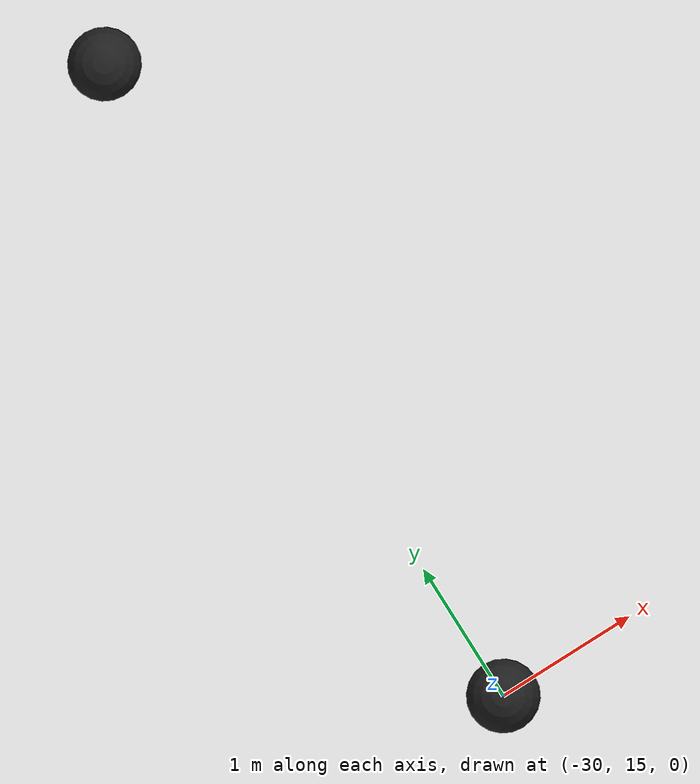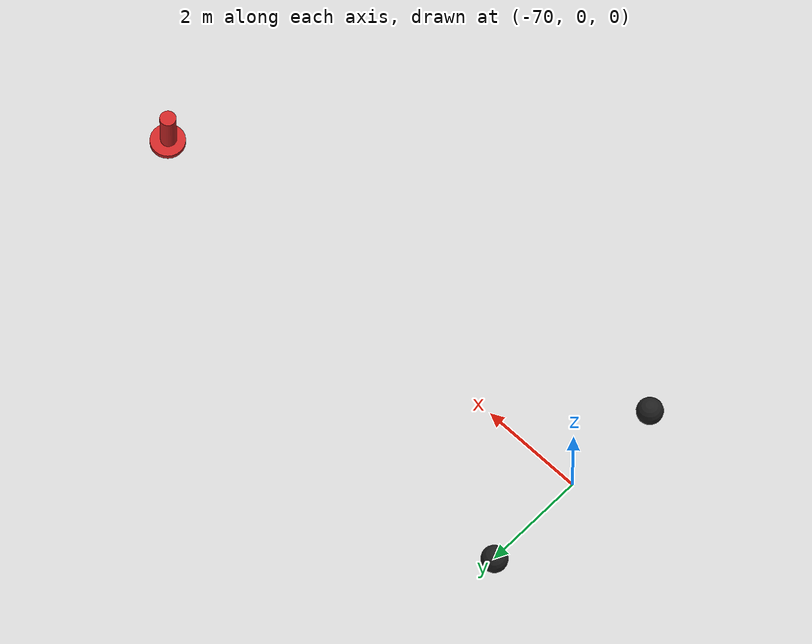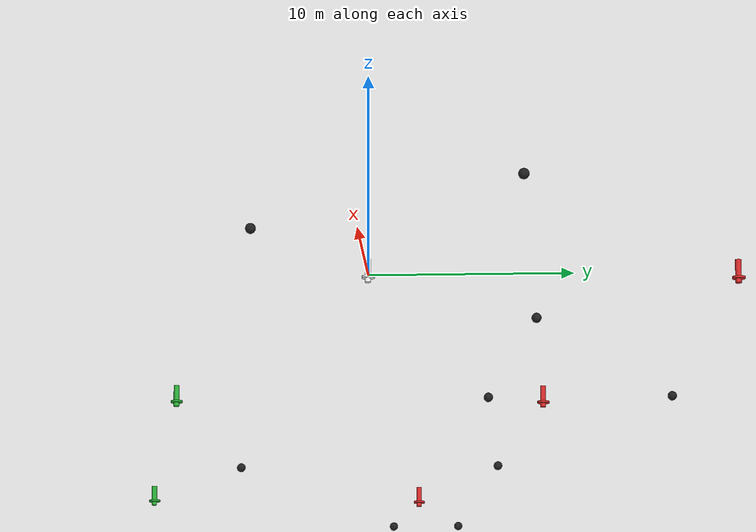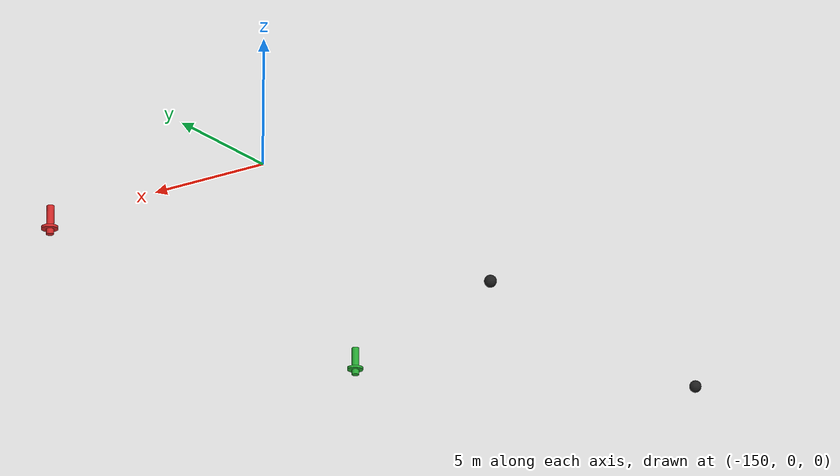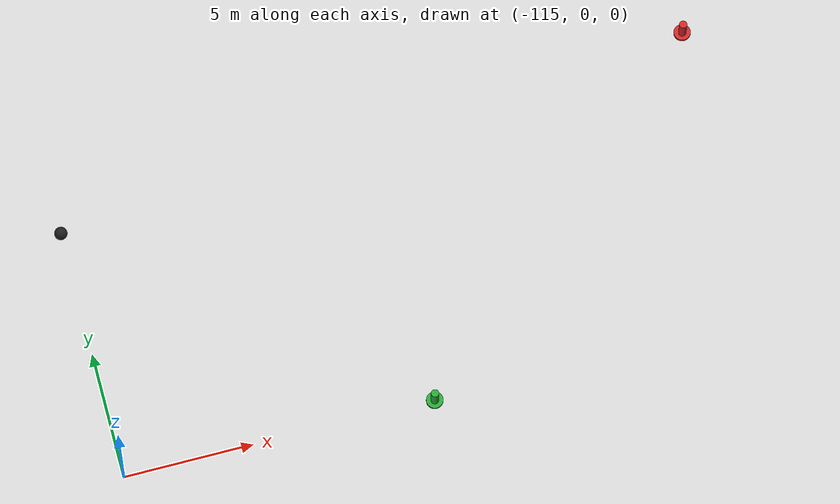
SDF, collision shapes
<?xml version="1.0"?>
<!-- Model for the short navigation course -->
<sdf version="1.6">
  <model name="short_navigation_course_2">

    <!-- Starboard_border -->
    <include>
      <name>red_bound_0</name>
      <pose>0 18 0 0 0 0</pose>
      <uri>https://fuel.gazebosim.org/1.0/openrobotics/models/mb_marker_buoy_red</uri>
      <plugin filename="gz-sim-label-system" name="gz::sim::systems::Label">
        <label>2</label>
      </plugin>
      <plugin name="vrx::PolyhedraBuoyancyDrag"
              filename="libPolyhedraBuoyancyDrag.so">
        <fluid_density>1000</fluid_density>
        <fluid_level>0.0</fluid_level>
        <linear_drag>25.0</linear_drag>
        <angular_drag>2.0</angular_drag>
        <buoyancy name="collision_outer">
          <link_name>link</link_name>
          <pose>0 0 -0.3 0 0 0</pose>
          <geometry>
            <cylinder>
              <radius>0.325</radius>
              <length>0.1</length>
            </cylinder>
          </geometry>
        </buoyancy>
        <wavefield>
          <size>1000 1000</size>
          <cell_count>50 50</cell_count>
          <wave>
            <model>PMS</model>
            <period>5.0</period>
            <number>3</number>
            <scale>1.1</scale>
            <gain>0.3</gain>
            <direction>1 0</direction>
            <angle>0.4</angle>
            <tau>2.0</tau>
            <amplitude>0.0</amplitude>
            <steepness>0.0</steepness>
          </wave>
        </wavefield>
      </plugin>

    </include>

    <include>
      <name>red_bound_1</name>
      <pose>-30 8 0 0 0 0</pose>
      <uri>https://fuel.gazebosim.org/1.0/openrobotics/models/mb_marker_buoy_red</uri>
      <plugin filename="gz-sim-label-system" name="gz::sim::systems::Label">
        <label>2</label>
      </plugin>
      <plugin name="vrx::PolyhedraBuoyancyDrag"
              filename="libPolyhedraBuoyancyDrag.so">
        <fluid_density>1000</fluid_density>
        <fluid_level>0.0</fluid_level>
        <linear_drag>25.0</linear_drag>
        <angular_drag>2.0</angular_drag>
        <buoyancy name="collision_outer">
          <link_name>link</link_name>
          <pose>0 0 -0.3 0 0 0</pose>
          <geometry>
            <cylinder>
              <radius>0.325</radius>
              <length>0.1</length>
            </cylinder>
          </geometry>
        </buoyancy>
        <wavefield>
          <size>1000 1000</size>
          <cell_count>50 50</cell_count>
          <wave>
            <model>PMS</model>
            <period>5.0</period>
            <number>3</number>
            <scale>1.1</scale>
            <gain>0.3</gain>
            <direction>1 0</direction>
            <angle>0.4</angle>
            <tau>2.0</tau>
            <amplitude>0.0</amplitude>
            <steepness>0.0</steepness>
          </wave>
        </wavefield>
      </plugin>

    </include>

    <include>
      <name>red_bound_2</name>
      <pose>-60 0 0 0 0 0</pose>
      <uri>https://fuel.gazebosim.org/1.0/openrobotics/models/mb_marker_buoy_red</uri>
      <plugin filename="gz-sim-label-system" name="gz::sim::systems::Label">
        <label>2</label>
      </plugin>
      <plugin name="vrx::PolyhedraBuoyancyDrag"
              filename="libPolyhedraBuoyancyDrag.so">
        <fluid_density>1000</fluid_density>
        <fluid_level>0.0</fluid_level>
        <linear_drag>25.0</linear_drag>
        <angular_drag>2.0</angular_drag>
        <buoyancy name="collision_outer">
          <link_name>link</link_name>
          <pose>0 0 -0.3 0 0 0</pose>
          <geometry>
            <cylinder>
              <radius>0.325</radius>
              <length>0.1</length>
            </cylinder>
          </geometry>
        </buoyancy>
        <wavefield>
          <size>1000 1000</size>
          <cell_count>50 50</cell_count>
          <wave>
            <model>PMS</model>
            <period>5.0</period>
            <number>3</number>
            <scale>1.1</scale>
            <gain>0.3</gain>
            <direction>1 0</direction>
            <angle>0.4</angle>
            <tau>2.0</tau>
            <amplitude>0.0</amplitude>
            <steepness>0.0</steepness>
          </wave>
        </wavefield>
      </plugin>

    </include>

    <include>
      <name>red_bound_3</name>
      <pose>-90 12 0 0 0 0</pose>
      <uri>https://fuel.gazebosim.org/1.0/openrobotics/models/mb_marker_buoy_red</uri>
      <plugin filename="gz-sim-label-system" name="gz::sim::systems::Label">
        <label>2</label>
      </plugin>
      <plugin name="vrx::PolyhedraBuoyancyDrag"
              filename="libPolyhedraBuoyancyDrag.so">
        <fluid_density>1000</fluid_density>
        <fluid_level>0.0</fluid_level>
        <linear_drag>25.0</linear_drag>
        <angular_drag>2.0</angular_drag>
        <buoyancy name="collision_outer">
          <link_name>link</link_name>
          <pose>0 0 -0.3 0 0 0</pose>
          <geometry>
            <cylinder>
              <radius>0.325</radius>
              <length>0.1</length>
            </cylinder>
          </geometry>
        </buoyancy>
        <wavefield>
          <size>1000 1000</size>
          <cell_count>50 50</cell_count>
          <wave>
            <model>PMS</model>
            <period>5.0</period>
            <number>3</number>
            <scale>1.1</scale>
            <gain>0.3</gain>
            <direction>1 0</direction>
            <angle>0.4</angle>
            <tau>2.0</tau>
            <amplitude>0.0</amplitude>
            <steepness>0.0</steepness>
          </wave>
        </wavefield>
      </plugin>

    </include>

    <include>
      <name>red_bound_4</name>
      <pose>-140 0 0 0 0 0</pose>
      <uri>https://fuel.gazebosim.org/1.0/openrobotics/models/mb_marker_buoy_red</uri>
      <plugin filename="gz-sim-label-system" name="gz::sim::systems::Label">
        <label>2</label>
      </plugin>
      <plugin name="vrx::PolyhedraBuoyancyDrag"
              filename="libPolyhedraBuoyancyDrag.so">
        <fluid_density>1000</fluid_density>
        <fluid_level>0.0</fluid_level>
        <linear_drag>25.0</linear_drag>
        <angular_drag>2.0</angular_drag>
        <buoyancy name="collision_outer">
          <link_name>link</link_name>
          <pose>0 0 -0.3 0 0 0</pose>
          <geometry>
            <cylinder>
              <radius>0.325</radius>
              <length>0.1</length>
            </cylinder>
          </geometry>
        </buoyancy>
        <wavefield>
          <size>1000 1000</size>
          <cell_count>50 50</cell_count>
          <wave>
            <model>PMS</model>
            <period>5.0</period>
            <number>3</number>
            <scale>1.1</scale>
            <gain>0.3</gain>
            <direction>1 0</direction>
            <angle>0.4</angle>
            <tau>2.0</tau>
            <amplitude>0.0</amplitude>
            <steepness>0.0</steepness>
          </wave>
        </wavefield>
      </plugin>

    </include>

    <include>
      <name>red_bound_5</name>
      <pose>-180 -10 0 0 0 0</pose>
      <uri>https://fuel.gazebosim.org/1.0/openrobotics/models/mb_marker_buoy_red</uri>
      <plugin filename="gz-sim-label-system" name="gz::sim::systems::Label">
        <label>2</label>
      </plugin>
      <plugin name="vrx::PolyhedraBuoyancyDrag"
              filename="libPolyhedraBuoyancyDrag.so">
        <fluid_density>1000</fluid_density>
        <fluid_level>0.0</fluid_level>
        <linear_drag>25.0</linear_drag>
        <angular_drag>2.0</angular_drag>
        <buoyancy name="collision_outer">
          <link_name>link</link_name>
          <pose>0 0 -0.3 0 0 0</pose>
          <geometry>
            <cylinder>
              <radius>0.325</radius>
              <length>0.1</length>
            </cylinder>
          </geometry>
        </buoyancy>
        <wavefield>
          <size>1000 1000</size>
          <cell_count>50 50</cell_count>
          <wave>
            <model>PMS</model>
            <period>5.0</period>
            <number>3</number>
            <scale>1.1</scale>
            <gain>0.3</gain>
            <direction>1 0</direction>
            <angle>0.4</angle>
            <tau>2.0</tau>
            <amplitude>0.0</amplitude>
            <steepness>0.0</steepness>
          </wave>
        </wavefield>
      </plugin>

    </include>

    <include>
      <name>red_bound_6</name>
      <pose>-240 -52 0 0 0 0</pose>
      <uri>https://fuel.gazebosim.org/1.0/openrobotics/models/mb_marker_buoy_red</uri>
      <plugin filename="gz-sim-label-system" name="gz::sim::systems::Label">
        <label>2</label>
      </plugin>
      <plugin name="vrx::PolyhedraBuoyancyDrag"
              filename="libPolyhedraBuoyancyDrag.so">
        <fluid_density>1000</fluid_density>
        <fluid_level>0.0</fluid_level>
        <linear_drag>25.0</linear_drag>
        <angular_drag>2.0</angular_drag>
        <buoyancy name="collision_outer">
          <link_name>link</link_name>
          <pose>0 0 -0.3 0 0 0</pose>
          <geometry>
            <cylinder>
              <radius>0.325</radius>
              <length>0.1</length>
            </cylinder>
          </geometry>
        </buoyancy>
        <wavefield>
          <size>1000 1000</size>
          <cell_count>50 50</cell_count>
          <wave>
            <model>PMS</model>
            <period>5.0</period>
            <number>3</number>
            <scale>1.1</scale>
            <gain>0.3</gain>
            <direction>1 0</direction>
            <angle>0.4</angle>
            <tau>2.0</tau>
            <amplitude>0.0</amplitude>
            <steepness>0.0</steepness>
          </wave>
        </wavefield>
      </plugin>

    </include>

    <include>
      <name>red_bound_7</name>
      <pose>-230 -90 0 0 0 0</pose>
      <uri>https://fuel.gazebosim.org/1.0/openrobotics/models/mb_marker_buoy_red</uri>
      <plugin filename="gz-sim-label-system" name="gz::sim::systems::Label">
        <label>2</label>
      </plugin>
      <plugin name="vrx::PolyhedraBuoyancyDrag"
              filename="libPolyhedraBuoyancyDrag.so">
        <fluid_density>1000</fluid_density>
        <fluid_level>0.0</fluid_level>
        <linear_drag>25.0</linear_drag>
        <angular_drag>2.0</angular_drag>
        <buoyancy name="collision_outer">
          <link_name>link</link_name>
          <pose>0 0 -0.3 0 0 0</pose>
          <geometry>
            <cylinder>
              <radius>0.325</radius>
              <length>0.1</length>
            </cylinder>
          </geometry>
        </buoyancy>
        <wavefield>
          <size>1000 1000</size>
          <cell_count>50 50</cell_count>
          <wave>
            <model>PMS</model>
            <period>5.0</period>
            <number>3</number>
            <scale>1.1</scale>
            <gain>0.3</gain>
            <direction>1 0</direction>
            <angle>0.4</angle>
            <tau>2.0</tau>
            <amplitude>0.0</amplitude>
            <steepness>0.0</steepness>
          </wave>
        </wavefield>
      </plugin>

    </include>

    <include>
      <name>red_bound_8</name>
      <pose>-230 -130 0 0 0 0</pose>
      <uri>https://fuel.gazebosim.org/1.0/openrobotics/models/mb_marker_buoy_red</uri>
      <plugin filename="gz-sim-label-system" name="gz::sim::systems::Label">
        <label>2</label>
      </plugin>
      <plugin name="vrx::PolyhedraBuoyancyDrag"
              filename="libPolyhedraBuoyancyDrag.so">
        <fluid_density>1000</fluid_density>
        <fluid_level>0.0</fluid_level>
        <linear_drag>25.0</linear_drag>
        <angular_drag>2.0</angular_drag>
        <buoyancy name="collision_outer">
          <link_name>link</link_name>
          <pose>0 0 -0.3 0 0 0</pose>
          <geometry>
            <cylinder>
              <radius>0.325</radius>
              <length>0.1</length>
            </cylinder>
          </geometry>
        </buoyancy>
        <wavefield>
          <size>1000 1000</size>
          <cell_count>50 50</cell_count>
          <wave>
            <model>PMS</model>
            <period>5.0</period>
            <number>3</number>
            <scale>1.1</scale>
            <gain>0.3</gain>
            <direction>1 0</direction>
            <angle>0.4</angle>
            <tau>2.0</tau>
            <amplitude>0.0</amplitude>
            <steepness>0.0</steepness>
          </wave>
        </wavefield>
      </plugin>

    </include>

    <!-- Port_border -->
    <include>
      <name>green_bound_0</name>
      <pose>0 0 0.2 0 0 0</pose>
      <uri>https://fuel.gazebosim.org/1.0/openrobotics/models/mb_marker_buoy_white</uri>
      <plugin filename="gz-sim-label-system" name="gz::sim::systems::Label">
        <label>5</label>
      </plugin>
      <plugin name="vrx::PolyhedraBuoyancyDrag"
              filename="libPolyhedraBuoyancyDrag.so">
        <fluid_density>1000</fluid_density>
        <fluid_level>0.0</fluid_level>
        <linear_drag>25.0</linear_drag>
        <angular_drag>2.0</angular_drag>
        <buoyancy name="collision_outer">
          <link_name>link</link_name>
          <pose>0 0 -0.3 0 0 0</pose>
          <geometry>
            <cylinder>
              <radius>0.325</radius>
              <length>0.1</length>
            </cylinder>
          </geometry>
        </buoyancy>
        <wavefield>
          <size>1000 1000</size>
          <cell_count>50 50</cell_count>
          <wave>
            <model>PMS</model>
            <period>5.0</period>
            <number>3</number>
            <scale>1.1</scale>
            <gain>0.3</gain>
            <direction>1 0</direction>
            <angle>0.4</angle>
            <tau>2.0</tau>
            <amplitude>0.0</amplitude>
            <steepness>0.0</steepness>
          </wave>
        </wavefield>
      </plugin>

    </include>

    <include>
      <name>green_bound_1</name>
      <pose>-30 -12 0.2 0 0 0</pose>
      <uri>https://fuel.gazebosim.org/1.0/openrobotics/models/mb_marker_buoy_green</uri>
      <plugin filename="gz-sim-label-system" name="gz::sim::systems::Label">
        <label>3</label>
      </plugin>
      <plugin name="vrx::PolyhedraBuoyancyDrag"
              filename="libPolyhedraBuoyancyDrag.so">
        <fluid_density>1000</fluid_density>
        <fluid_level>0.0</fluid_level>
        <linear_drag>25.0</linear_drag>
        <angular_drag>2.0</angular_drag>
        <buoyancy name="collision_outer">
          <link_name>link</link_name>
          <pose>0 0 -0.3 0 0 0</pose>
          <geometry>
            <cylinder>
              <radius>0.325</radius>
              <length>0.1</length>
            </cylinder>
          </geometry>
        </buoyancy>
        <wavefield>
          <size>1000 1000</size>
          <cell_count>50 50</cell_count>
          <wave>
            <model>PMS</model>
            <period>5.0</period>
            <number>3</number>
            <scale>1.1</scale>
            <gain>0.3</gain>
            <direction>1 0</direction>
            <angle>0.4</angle>
            <tau>2.0</tau>
            <amplitude>0.0</amplitude>
            <steepness>0.0</steepness>
          </wave>
        </wavefield>
      </plugin>

    </include>

    <include>
      <name>green_bound_2</name>
      <pose>-60 -16 0.2 0 0 0</pose>
      <uri>https://fuel.gazebosim.org/1.0/openrobotics/models/mb_marker_buoy_green</uri>
      <plugin filename="gz-sim-label-system" name="gz::sim::systems::Label">
        <label>3</label>
      </plugin>
      <plugin name="vrx::PolyhedraBuoyancyDrag"
              filename="libPolyhedraBuoyancyDrag.so">
        <fluid_density>1000</fluid_density>
        <fluid_level>0.0</fluid_level>
        <linear_drag>25.0</linear_drag>
        <angular_drag>2.0</angular_drag>
        <buoyancy name="collision_outer">
          <link_name>link</link_name>
          <pose>0 0 -0.3 0 0 0</pose>
          <geometry>
            <cylinder>
              <radius>0.325</radius>
              <length>0.1</length>
            </cylinder>
          </geometry>
        </buoyancy>
        <wavefield>
          <size>1000 1000</size>
          <cell_count>50 50</cell_count>
          <wave>
            <model>PMS</model>
            <period>5.0</period>
            <number>3</number>
            <scale>1.1</scale>
            <gain>0.3</gain>
            <direction>1 0</direction>
            <angle>0.4</angle>
            <tau>2.0</tau>
            <amplitude>0.0</amplitude>
            <steepness>0.0</steepness>
          </wave>
        </wavefield>
      </plugin>

    </include>

    <include>
      <name>green_bound_3</name>
      <pose>-103 0 0.2 0 0 0</pose>
      <uri>https://fuel.gazebosim.org/1.0/openrobotics/models/mb_marker_buoy_green</uri>
      <plugin filename="gz-sim-label-system" name="gz::sim::systems::Label">
        <label>3</label>
      </plugin>
      <plugin name="vrx::PolyhedraBuoyancyDrag"
              filename="libPolyhedraBuoyancyDrag.so">
        <fluid_density>1000</fluid_density>
        <fluid_level>0.0</fluid_level>
        <linear_drag>25.0</linear_drag>
        <angular_drag>2.0</angular_drag>
        <buoyancy name="collision_outer">
          <link_name>link</link_name>
          <pose>0 0 -0.3 0 0 0</pose>
          <geometry>
            <cylinder>
              <radius>0.325</radius>
              <length>0.1</length>
            </cylinder>
          </geometry>
        </buoyancy>
        <wavefield>
          <size>1000 1000</size>
          <cell_count>50 50</cell_count>
          <wave>
            <model>PMS</model>
            <period>5.0</period>
            <number>3</number>
            <scale>1.1</scale>
            <gain>0.3</gain>
            <direction>1 0</direction>
            <angle>0.4</angle>
            <tau>2.0</tau>
            <amplitude>0.0</amplitude>
            <steepness>0.0</steepness>
          </wave>
        </wavefield>
      </plugin>

    </include>

    <include>
      <name>green_bound_4</name>
      <pose>-140 -20 0.2 0 0 0</pose>
      <uri>https://fuel.gazebosim.org/1.0/openrobotics/models/mb_marker_buoy_green</uri>
      <plugin filename="gz-sim-label-system" name="gz::sim::systems::Label">
        <label>3</label>
      </plugin>
      <plugin name="vrx::PolyhedraBuoyancyDrag"
              filename="libPolyhedraBuoyancyDrag.so">
        <fluid_density>1000</fluid_density>
        <fluid_level>0.0</fluid_level>
        <linear_drag>25.0</linear_drag>
        <angular_drag>2.0</angular_drag>
        <buoyancy name="collision_outer">
          <link_name>link</link_name>
          <pose>0 0 -0.3 0 0 0</pose>
          <geometry>
            <cylinder>
              <radius>0.325</radius>
              <length>0.1</length>
            </cylinder>
          </geometry>
        </buoyancy>
        <wavefield>
          <size>1000 1000</size>
          <cell_count>50 50</cell_count>
          <wave>
            <model>PMS</model>
            <period>5.0</period>
            <number>3</number>
            <scale>1.1</scale>
            <gain>0.3</gain>
            <direction>1 0</direction>
            <angle>0.4</angle>
            <tau>2.0</tau>
            <amplitude>0.0</amplitude>
            <steepness>0.0</steepness>
          </wave>
        </wavefield>
      </plugin>

    </include>

    <include>
      <name>green_bound_5</name>
      <pose>-170 -30 0.2 0 0 0</pose>
      <uri>https://fuel.gazebosim.org/1.0/openrobotics/models/mb_marker_buoy_green</uri>
      <plugin filename="gz-sim-label-system" name="gz::sim::systems::Label">
        <label>3</label>
      </plugin>
      <plugin name="vrx::PolyhedraBuoyancyDrag"
              filename="libPolyhedraBuoyancyDrag.so">
        <fluid_density>1000</fluid_density>
        <fluid_level>0.0</fluid_level>
        <linear_drag>25.0</linear_drag>
        <angular_drag>2.0</angular_drag>
        <buoyancy name="collision_outer">
          <link_name>link</link_name>
          <pose>0 0 -0.3 0 0 0</pose>
          <geometry>
            <cylinder>
              <radius>0.325</radius>
              <length>0.1</length>
            </cylinder>
          </geometry>
        </buoyancy>
        <wavefield>
          <size>1000 1000</size>
          <cell_count>50 50</cell_count>
          <wave>
            <model>PMS</model>
            <period>5.0</period>
            <number>3</number>
            <scale>1.1</scale>
            <gain>0.3</gain>
            <direction>1 0</direction>
            <angle>0.4</angle>
            <tau>2.0</tau>
            <amplitude>0.0</amplitude>
            <steepness>0.0</steepness>
          </wave>
        </wavefield>
      </plugin>

    </include>

    <include>
      <name>green_bound_6</name>
      <pose>-220 -60 0.2 0 0 0</pose>
      <uri>https://fuel.gazebosim.org/1.0/openrobotics/models/mb_marker_buoy_green</uri>
      <plugin filename="gz-sim-label-system" name="gz::sim::systems::Label">
        <label>3</label>
      </plugin>
      <plugin name="vrx::PolyhedraBuoyancyDrag"
              filename="libPolyhedraBuoyancyDrag.so">
        <fluid_density>1000</fluid_density>
        <fluid_level>0.0</fluid_level>
        <linear_drag>25.0</linear_drag>
        <angular_drag>2.0</angular_drag>
        <buoyancy name="collision_outer">
          <link_name>link</link_name>
          <pose>0 0 -0.3 0 0 0</pose>
          <geometry>
            <cylinder>
              <radius>0.325</radius>
              <length>0.1</length>
            </cylinder>
          </geometry>
        </buoyancy>
        <wavefield>
          <size>1000 1000</size>
          <cell_count>50 50</cell_count>
          <wave>
            <model>PMS</model>
            <period>5.0</period>
            <number>3</number>
            <scale>1.1</scale>
            <gain>0.3</gain>
            <direction>1 0</direction>
            <angle>0.4</angle>
            <tau>2.0</tau>
            <amplitude>0.0</amplitude>
            <steepness>0.0</steepness>
          </wave>
        </wavefield>
      </plugin>

    </include>

    <include>
      <name>green_bound_7</name>
      <pose>-210 -90 0.2 0 0 0</pose>
      <uri>https://fuel.gazebosim.org/1.0/openrobotics/models/mb_marker_buoy_green</uri>
      <plugin filename="gz-sim-label-system" name="gz::sim::systems::Label">
        <label>3</label>
      </plugin>
      <plugin name="vrx::PolyhedraBuoyancyDrag"
              filename="libPolyhedraBuoyancyDrag.so">
        <fluid_density>1000</fluid_density>
        <fluid_level>0.0</fluid_level>
        <linear_drag>25.0</linear_drag>
        <angular_drag>2.0</angular_drag>
        <buoyancy name="collision_outer">
          <link_name>link</link_name>
          <pose>0 0 -0.3 0 0 0</pose>
          <geometry>
            <cylinder>
              <radius>0.325</radius>
              <length>0.1</length>
            </cylinder>
          </geometry>
        </buoyancy>
        <wavefield>
          <size>1000 1000</size>
          <cell_count>50 50</cell_count>
          <wave>
            <model>PMS</model>
            <period>5.0</period>
            <number>3</number>
            <scale>1.1</scale>
            <gain>0.3</gain>
            <direction>1 0</direction>
            <angle>0.4</angle>
            <tau>2.0</tau>
            <amplitude>0.0</amplitude>
            <steepness>0.0</steepness>
          </wave>
        </wavefield>
      </plugin>

    </include>

    <include>
      <name>green_bound_8</name>
      <pose>-210 -120 0.2 0 0 0</pose>
      <uri>https://fuel.gazebosim.org/1.0/openrobotics/models/mb_marker_buoy_black</uri>
      <plugin filename="gz-sim-label-system" name="gz::sim::systems::Label">
        <label>4</label>
      </plugin>
      <plugin name="vrx::PolyhedraBuoyancyDrag"
              filename="libPolyhedraBuoyancyDrag.so">
        <fluid_density>1000</fluid_density>
        <fluid_level>0.0</fluid_level>
        <linear_drag>25.0</linear_drag>
        <angular_drag>2.0</angular_drag>
        <buoyancy name="collision_outer">
          <link_name>link</link_name>
          <pose>0 0 -0.3 0 0 0</pose>
          <geometry>
            <cylinder>
              <radius>0.325</radius>
              <length>0.1</length>
            </cylinder>
          </geometry>
        </buoyancy>
        <wavefield>
          <size>1000 1000</size>
          <cell_count>50 50</cell_count>
          <wave>
            <model>PMS</model>
            <period>5.0</period>
            <number>3</number>
            <scale>1.1</scale>
            <gain>0.3</gain>
            <direction>1 0</direction>
            <angle>0.4</angle>
            <tau>2.0</tau>
            <amplitude>0.0</amplitude>
            <steepness>0.0</steepness>
          </wave>
        </wavefield>
      </plugin>

    </include>

    <!-- Obstacles -->
    <include>
      <name>obstacle_0</name>
      <pose>-10 8 0.0 0 0 0 </pose>
      <uri>https://fuel.gazebosim.org/1.0/openrobotics/models/mb_round_buoy_black</uri>
      <plugin filename="gz-sim-label-system" name="gz::sim::systems::Label">
        <label>8</label>
      </plugin>
      <plugin name="vrx::PolyhedraBuoyancyDrag"
              filename="libPolyhedraBuoyancyDrag.so">
        <fluid_density>1000</fluid_density>
        <fluid_level>0.0</fluid_level>
        <linear_drag>75.0</linear_drag>
        <angular_drag>2.0</angular_drag>
        <buoyancy name="collision_outer">
          <link_name>link</link_name>
          <pose>0 0 0 0 0 0</pose>
          <geometry>
            <sphere>
              <radius>0.21</radius>
          </sphere>
          </geometry>
        </buoyancy>
        <wavefield>
          <topic>/vrx/wavefield/parameters</topic>
        </wavefield>
      </plugin>
    </include>

    <include>
      <name>obstacle_1</name>
      <pose>-30 20 0.0 0 0 0 </pose>
      <uri>https://fuel.gazebosim.org/1.0/openrobotics/models/mb_round_buoy_black</uri>
      <plugin filename="gz-sim-label-system" name="gz::sim::systems::Label">
        <label>8</label>
      </plugin>
      <plugin name="vrx::PolyhedraBuoyancyDrag"
              filename="libPolyhedraBuoyancyDrag.so">
        <fluid_density>1000</fluid_density>
        <fluid_level>0.0</fluid_level>
        <linear_drag>75.0</linear_drag>
        <angular_drag>2.0</angular_drag>
        <buoyancy name="collision_outer">
          <link_name>link</link_name>
          <pose>0 0 0 0 0 0</pose>
          <geometry>
            <sphere>
              <radius>0.21</radius>
          </sphere>
          </geometry>
        </buoyancy>
        <wavefield>
          <topic>/vrx/wavefield/parameters</topic>
        </wavefield>
      </plugin>
    </include>

    <include>
      <name>obstacle_2</name>
      <pose>-30 15 0.0 0 0 0 </pose>
      <uri>https://fuel.gazebosim.org/1.0/openrobotics/models/mb_round_buoy_black</uri>
      <plugin filename="gz-sim-label-system" name="gz::sim::systems::Label">
        <label>8</label>
      </plugin>
      <plugin name="vrx::PolyhedraBuoyancyDrag"
              filename="libPolyhedraBuoyancyDrag.so">
        <fluid_density>1000</fluid_density>
        <fluid_level>0.0</fluid_level>
        <linear_drag>75.0</linear_drag>
        <angular_drag>2.0</angular_drag>
        <buoyancy name="collision_outer">
          <link_name>link</link_name>
          <pose>0 0 0 0 0 0</pose>
          <geometry>
            <sphere>
              <radius>0.21</radius>
          </sphere>
          </geometry>
        </buoyancy>
        <wavefield>
          <topic>/vrx/wavefield/parameters</topic>
        </wavefield>
      </plugin>
    </include>

    <include>
      <name>obstacle_3</name>
      <pose>-30 5 0.0 0 0 0 </pose>
      <uri>https://fuel.gazebosim.org/1.0/openrobotics/models/mb_round_buoy_black</uri>
      <plugin filename="gz-sim-label-system" name="gz::sim::systems::Label">
        <label>8</label>
      </plugin>
      <plugin name="vrx::PolyhedraBuoyancyDrag"
              filename="libPolyhedraBuoyancyDrag.so">
        <fluid_density>1000</fluid_density>
        <fluid_level>0.0</fluid_level>
        <linear_drag>75.0</linear_drag>
        <angular_drag>2.0</angular_drag>
        <buoyancy name="collision_outer">
          <link_name>link</link_name>
          <pose>0 0 0 0 0 0</pose>
          <geometry>
            <sphere>
              <radius>0.21</radius>
          </sphere>
          </geometry>
        </buoyancy>
        <wavefield>
          <topic>/vrx/wavefield/parameters</topic>
        </wavefield>
      </plugin>
    </include>

    <include>
      <name>obstacle_4</name>
      <pose>-50 5 0.0 0 0 0 </pose>
      <uri>https://fuel.gazebosim.org/1.0/openrobotics/models/mb_round_buoy_black</uri>
      <plugin filename="gz-sim-label-system" name="gz::sim::systems::Label">
        <label>8</label>
      </plugin>
      <plugin name="vrx::PolyhedraBuoyancyDrag"
              filename="libPolyhedraBuoyancyDrag.so">
        <fluid_density>1000</fluid_density>
        <fluid_level>0.0</fluid_level>
        <linear_drag>75.0</linear_drag>
        <angular_drag>2.0</angular_drag>
        <buoyancy name="collision_outer">
          <link_name>link</link_name>
          <pose>0 0 0 0 0 0</pose>
          <geometry>
            <sphere>
              <radius>0.21</radius>
          </sphere>
          </geometry>
        </buoyancy>
        <wavefield>
          <topic>/vrx/wavefield/parameters</topic>
        </wavefield>
      </plugin>
    </include>

    <include>
      <name>obstacle_5</name>
      <pose>-50 -10 0.0 0 0 0 </pose>
      <uri>https://fuel.gazebosim.org/1.0/openrobotics/models/mb_round_buoy_black</uri>
      <plugin filename="gz-sim-label-system" name="gz::sim::systems::Label">
        <label>8</label>
      </plugin>
      <plugin name="vrx::PolyhedraBuoyancyDrag"
              filename="libPolyhedraBuoyancyDrag.so">
        <fluid_density>1000</fluid_density>
        <fluid_level>0.0</fluid_level>
        <linear_drag>75.0</linear_drag>
        <angular_drag>2.0</angular_drag>
        <buoyancy name="collision_outer">
          <link_name>link</link_name>
          <pose>0 0 0 0 0 0</pose>
          <geometry>
            <sphere>
              <radius>0.21</radius>
          </sphere>
          </geometry>
        </buoyancy>
        <wavefield>
          <topic>/vrx/wavefield/parameters</topic>
        </wavefield>
      </plugin>
    </include>

    <include>
      <name>obstacle_6</name>
      <pose>-70 -2 0.0 0 0 0 </pose>
      <uri>https://fuel.gazebosim.org/1.0/openrobotics/models/mb_round_buoy_black</uri>
      <plugin filename="gz-sim-label-system" name="gz::sim::systems::Label">
        <label>8</label>
      </plugin>
      <plugin name="vrx::PolyhedraBuoyancyDrag"
              filename="libPolyhedraBuoyancyDrag.so">
        <fluid_density>1000</fluid_density>
        <fluid_level>0.0</fluid_level>
        <linear_drag>75.0</linear_drag>
        <angular_drag>2.0</angular_drag>
        <buoyancy name="collision_outer">
          <link_name>link</link_name>
          <pose>0 0 0 0 0 0</pose>
          <geometry>
            <sphere>
              <radius>0.21</radius>
          </sphere>
          </geometry>
        </buoyancy>
        <wavefield>
          <topic>/vrx/wavefield/parameters</topic>
        </wavefield>
      </plugin>
    </include>

    <include>
      <name>obstacle_7</name>
      <pose>-70 2 0.0 0 0 0 </pose>
      <uri>https://fuel.gazebosim.org/1.0/openrobotics/models/mb_round_buoy_black</uri>
      <plugin filename="gz-sim-label-system" name="gz::sim::systems::Label">
        <label>8</label>
      </plugin>
      <plugin name="vrx::PolyhedraBuoyancyDrag"
              filename="libPolyhedraBuoyancyDrag.so">
        <fluid_density>1000</fluid_density>
        <fluid_level>0.0</fluid_level>
        <linear_drag>75.0</linear_drag>
        <angular_drag>2.0</angular_drag>
        <buoyancy name="collision_outer">
          <link_name>link</link_name>
          <pose>0 0 0 0 0 0</pose>
          <geometry>
            <sphere>
              <radius>0.21</radius>
          </sphere>
          </geometry>
        </buoyancy>
        <wavefield>
          <topic>/vrx/wavefield/parameters</topic>
        </wavefield>
      </plugin>
    </include>

    <include>
      <name>obstacle_8</name>
      <pose>10 20 0.0 0 0 0 </pose>
      <uri>https://fuel.gazebosim.org/1.0/openrobotics/models/mb_round_buoy_black</uri>
      <plugin filename="gz-sim-label-system" name="gz::sim::systems::Label">
        <label>8</label>
      </plugin>
      <plugin name="vrx::PolyhedraBuoyancyDrag"
              filename="libPolyhedraBuoyancyDrag.so">
        <fluid_density>1000</fluid_density>
        <fluid_level>0.0</fluid_level>
        <linear_drag>75.0</linear_drag>
        <angular_drag>2.0</angular_drag>
        <buoyancy name="collision_outer">
          <link_name>link</link_name>
          <pose>0 0 0 0 0 0</pose>
          <geometry>
            <sphere>
              <radius>0.21</radius>
          </sphere>
          </geometry>
        </buoyancy>
        <wavefield>
          <topic>/vrx/wavefield/parameters</topic>
        </wavefield>
      </plugin>
    </include>

    <include>
      <name>obstacle_9</name>
      <pose>20 8 0.0 0 0 0 </pose>
      <uri>https://fuel.gazebosim.org/1.0/openrobotics/models/mb_round_buoy_black</uri>
      <plugin filename="gz-sim-label-system" name="gz::sim::systems::Label">
        <label>8</label>
      </plugin>
      <plugin name="vrx::PolyhedraBuoyancyDrag"
              filename="libPolyhedraBuoyancyDrag.so">
        <fluid_density>1000</fluid_density>
        <fluid_level>0.0</fluid_level>
        <linear_drag>75.0</linear_drag>
        <angular_drag>2.0</angular_drag>
        <buoyancy name="collision_outer">
          <link_name>link</link_name>
          <pose>0 0 0 0 0 0</pose>
          <geometry>
            <sphere>
              <radius>0.21</radius>
          </sphere>
          </geometry>
        </buoyancy>
        <wavefield>
          <topic>/vrx/wavefield/parameters</topic>
        </wavefield>
      </plugin>
    </include>

    <include>
      <name>obstacle_10</name>
      <pose>10 -5 0.0 0 0 0 </pose>
      <uri>https://fuel.gazebosim.org/1.0/openrobotics/models/mb_round_buoy_black</uri>
      <plugin filename="gz-sim-label-system" name="gz::sim::systems::Label">
        <label>8</label>
      </plugin>
      <plugin name="vrx::PolyhedraBuoyancyDrag"
              filename="libPolyhedraBuoyancyDrag.so">
        <fluid_density>1000</fluid_density>
        <fluid_level>0.0</fluid_level>
        <linear_drag>75.0</linear_drag>
        <angular_drag>2.0</angular_drag>
        <buoyancy name="collision_outer">
          <link_name>link</link_name>
          <pose>0 0 0 0 0 0</pose>
          <geometry>
            <sphere>
              <radius>0.21</radius>
          </sphere>
          </geometry>
        </buoyancy>
        <wavefield>
          <topic>/vrx/wavefield/parameters</topic>
        </wavefield>
      </plugin>
    </include>

    <include>
      <name>obstacle_11</name>
      <pose>-115 10 0.0 0 0 0 </pose>
      <uri>https://fuel.gazebosim.org/1.0/openrobotics/models/mb_round_buoy_black</uri>
      <plugin filename="gz-sim-label-system" name="gz::sim::systems::Label">
        <label>8</label>
      </plugin>
      <plugin name="vrx::PolyhedraBuoyancyDrag"
              filename="libPolyhedraBuoyancyDrag.so">
        <fluid_density>1000</fluid_density>
        <fluid_level>0.0</fluid_level>
        <linear_drag>75.0</linear_drag>
        <angular_drag>2.0</angular_drag>
        <buoyancy name="collision_outer">
          <link_name>link</link_name>
          <pose>0 0 0 0 0 0</pose>
          <geometry>
            <sphere>
              <radius>0.21</radius>
          </sphere>
          </geometry>
        </buoyancy>
        <wavefield>
          <topic>/vrx/wavefield/parameters</topic>
        </wavefield>
      </plugin>
    </include>

    <include>
      <name>obstacle_12</name>
      <pose>-150 -15 0.0 0 0 0 </pose>
      <uri>https://fuel.gazebosim.org/1.0/openrobotics/models/mb_round_buoy_black</uri>
      <plugin filename="gz-sim-label-system" name="gz::sim::systems::Label">
        <label>8</label>
      </plugin>
      <plugin name="vrx::PolyhedraBuoyancyDrag"
              filename="libPolyhedraBuoyancyDrag.so">
        <fluid_density>1000</fluid_density>
        <fluid_level>0.0</fluid_level>
        <linear_drag>75.0</linear_drag>
        <angular_drag>2.0</angular_drag>
        <buoyancy name="collision_outer">
          <link_name>link</link_name>
          <pose>0 0 0 0 0 0</pose>
          <geometry>
            <sphere>
              <radius>0.21</radius>
          </sphere>
          </geometry>
        </buoyancy>
        <wavefield>
          <topic>/vrx/wavefield/parameters</topic>
        </wavefield>
      </plugin>
    </include>

    <include>
      <name>obstacle_13</name>
      <pose>-150 -30 0.0 0 0 0 </pose>
      <uri>https://fuel.gazebosim.org/1.0/openrobotics/models/mb_round_buoy_black</uri>
      <plugin filename="gz-sim-label-system" name="gz::sim::systems::Label">
        <label>8</label>
      </plugin>
      <plugin name="vrx::PolyhedraBuoyancyDrag"
              filename="libPolyhedraBuoyancyDrag.so">
        <fluid_density>1000</fluid_density>
        <fluid_level>0.0</fluid_level>
        <linear_drag>75.0</linear_drag>
        <angular_drag>2.0</angular_drag>
        <buoyancy name="collision_outer">
          <link_name>link</link_name>
          <pose>0 0 0 0 0 0</pose>
          <geometry>
            <sphere>
              <radius>0.21</radius>
          </sphere>
          </geometry>
        </buoyancy>
        <wavefield>
          <topic>/vrx/wavefield/parameters</topic>
        </wavefield>
      </plugin>
    </include>

    <include>
      <name>obstacle_14</name>
      <pose>-200 -40 0.0 0 0 0 </pose>
      <uri>https://fuel.gazebosim.org/1.0/openrobotics/models/mb_round_buoy_black</uri>
      <plugin filename="gz-sim-label-system" name="gz::sim::systems::Label">
        <label>8</label>
      </plugin>
      <plugin name="vrx::PolyhedraBuoyancyDrag"
              filename="libPolyhedraBuoyancyDrag.so">
        <fluid_density>1000</fluid_density>
        <fluid_level>0.0</fluid_level>
        <linear_drag>75.0</linear_drag>
        <angular_drag>2.0</angular_drag>
        <buoyancy name="collision_outer">
          <link_name>link</link_name>
          <pose>0 0 0 0 0 0</pose>
          <geometry>
            <sphere>
              <radius>0.21</radius>
          </sphere>
          </geometry>
        </buoyancy>
        <wavefield>
          <topic>/vrx/wavefield/parameters</topic>
        </wavefield>
      </plugin>
    </include>

    <include>
      <name>obstacle_15</name>
      <pose>-235 -75 0.0 0 0 0 </pose>
      <uri>https://fuel.gazebosim.org/1.0/openrobotics/models/mb_round_buoy_black</uri>
      <plugin filename="gz-sim-label-system" name="gz::sim::systems::Label">
        <label>8</label>
      </plugin>
      <plugin name="vrx::PolyhedraBuoyancyDrag"
              filename="libPolyhedraBuoyancyDrag.so">
        <fluid_density>1000</fluid_density>
        <fluid_level>0.0</fluid_level>
        <linear_drag>75.0</linear_drag>
        <angular_drag>2.0</angular_drag>
        <buoyancy name="collision_outer">
          <link_name>link</link_name>
          <pose>0 0 0 0 0 0</pose>
          <geometry>
            <sphere>
              <radius>0.21</radius>
          </sphere>
          </geometry>
        </buoyancy>
        <wavefield>
          <topic>/vrx/wavefield/parameters</topic>
        </wavefield>
      </plugin>
    </include>

    <include>
      <name>obstacle_16</name>
      <pose>-230 -105 0.0 0 0 0 </pose>
      <uri>https://fuel.gazebosim.org/1.0/openrobotics/models/mb_round_buoy_black</uri>
      <plugin filename="gz-sim-label-system" name="gz::sim::systems::Label">
        <label>8</label>
      </plugin>
      <plugin name="vrx::PolyhedraBuoyancyDrag"
              filename="libPolyhedraBuoyancyDrag.so">
        <fluid_density>1000</fluid_density>
        <fluid_level>0.0</fluid_level>
        <linear_drag>75.0</linear_drag>
        <angular_drag>2.0</angular_drag>
        <buoyancy name="collision_outer">
          <link_name>link</link_name>
          <pose>0 0 0 0 0 0</pose>
          <geometry>
            <sphere>
              <radius>0.21</radius>
          </sphere>
          </geometry>
        </buoyancy>
        <wavefield>
          <topic>/vrx/wavefield/parameters</topic>
        </wavefield>
      </plugin>
    </include>

  </model>

</sdf>

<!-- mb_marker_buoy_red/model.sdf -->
<sdf version="1.6">
  <model name="mb_marker_buoy_red">
    <link name="link">
      <inertial>
        <pose>0 0 -2 0 0 0</pose>
        <!-- Mass determined based on buoyancy geometry so object
             floats at mid-point of sphere -->
        <mass>20</mass>
        <!-- Mark only - based on cylinder -->
        <inertia>
          <ixx>1.0</ixx>
          <ixy>0</ixy>
          <ixz>0</ixz>
          <iyy>1.0</iyy>
          <iyz>0</iyz>
          <izz>0.1</izz>
        </inertia>
      </inertial>
      <collision name="collision_inner">
        <pose>0 -0.02 0.02 0 0 0</pose>
        <geometry>
          <cylinder>
            <radius>0.15</radius>
            <length>1.15</length>
          </cylinder>
        </geometry>
      </collision>
      <collision name="collision_outer">
        <pose>0 0 -0.3 0 0 0</pose>
        <geometry>
          <cylinder>
            <radius>0.325</radius>
            <length>0.1</length>
          </cylinder>
        </geometry>
      </collision>
      <visual name="visual">
        <pose>0 0 0 1.57079 0 0</pose>
        <geometry>
	        <mesh><uri>model://mb_marker_buoy_red/meshes/mb_marker_buoy.dae</uri></mesh>
        </geometry>
        <material>
          <script>
            <uri>model://mb_marker_buoy_red/materials/scripts/mb_marker_buoy.material</uri>
            <name>mb_marker_buoy/Red</name>
          </script>
        </material>
      </visual>
    </link>
    <plugin name="BuoyancyPlugin" filename="libbuoyancy_gazebo_plugin.so">
      <wave_model>ocean_waves</wave_model>
      <fluid_density>1000</fluid_density>
      <fluid_level>0.0</fluid_level>
      <linear_drag>25.0</linear_drag>
      <angular_drag>2.0</angular_drag>
      <buoyancy name="buoyancy_sphere">
        <link_name>link</link_name>
        <pose>0 0 -0.12 0 0 0</pose>
        <geometry>
          <sphere>
            <radius>0.325</radius>
          </sphere>
        </geometry>
      </buoyancy>
    </plugin>
  </model>
</sdf>

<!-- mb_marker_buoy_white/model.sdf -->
<sdf version="1.6">
  <model name="mb_marker_buoy_white">
    <link name="link">
      <inertial>
        <pose>0 0 -2 0 0 0</pose>
        <!-- Mass determined based on buoyancy geometry so object
             floats at mid-point of sphere -->
        <mass>20</mass>
        <!-- Mark only - based on cylinder -->
        <inertia>
          <ixx>1.0</ixx>
          <ixy>0</ixy>
          <ixz>0</ixz>
          <iyy>1.0</iyy>
          <iyz>0</iyz>
          <izz>0.1</izz>
        </inertia>
      </inertial>
      <collision name="collision_inner">
        <pose>0 -0.02 0.02 0 0 0</pose>
        <geometry>
          <cylinder>
            <radius>0.15</radius>
            <length>1.15</length>
          </cylinder>
        </geometry>
      </collision>
      <collision name="collision_outer">
        <pose>0 0 -0.3 0 0 0</pose>
        <geometry>
          <cylinder>
            <radius>0.325</radius>
            <length>0.1</length>
          </cylinder>
        </geometry>
      </collision>
      <visual name="visual">
        <pose>0 0 0 1.57079 0 0</pose>
        <geometry>
	        <mesh><uri>model://mb_marker_buoy_red/meshes/mb_marker_buoy.dae</uri></mesh>
        </geometry>
        <material>
          <script>
            <uri>file://media/materials/scripts/gazebo.material</uri>
            <name>Gazebo/White</name>
          </script>
        </material>
      </visual>
    </link>
    <plugin name="BuoyancyPlugin" filename="libbuoyancy_gazebo_plugin.so">
      <wave_model>ocean_waves</wave_model>
      <fluid_density>1000</fluid_density>
      <fluid_level>0.0</fluid_level>
      <linear_drag>25.0</linear_drag>
      <angular_drag>2.0</angular_drag>
      <buoyancy name="buoyancy_sphere">
        <link_name>link</link_name>
        <pose>0 0 -0.12 0 0 0</pose>
        <geometry>
          <sphere>
            <radius>0.325</radius>
          </sphere>
        </geometry>
      </buoyancy>
    </plugin>
  </model>
</sdf>

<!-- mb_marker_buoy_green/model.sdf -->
<sdf version="1.6">
  <model name="mb_marker_buoy_green">
    <link name="link">
      <inertial>
        <pose>0 0 -2 0 0 0</pose>
        <!-- Mass determined based on buoyancy geometry so object
             floats at mid-point of sphere -->
        <mass>20</mass>
        <!-- Mark only - based on cylinder -->
        <inertia>
          <ixx>1.0</ixx>
          <ixy>0</ixy>
          <ixz>0</ixz>
          <iyy>1.0</iyy>
          <iyz>0</iyz>
          <izz>0.1</izz>
        </inertia>
      </inertial>
      <collision name="collision_inner">
        <pose>0 -0.02 0.02 0 0 0</pose>
        <geometry>
          <cylinder>
            <radius>0.15</radius>
            <length>1.15</length>
          </cylinder>
        </geometry>
      </collision>
      <collision name="collision_outer">
        <pose>0 0 -0.3 0 0 0</pose>
        <geometry>
          <cylinder>
            <radius>0.325</radius>
            <length>0.1</length>
          </cylinder>
        </geometry>
      </collision>
      <visual name="visual">
        <pose>0 0 0 1.57079 0 0</pose>
        <geometry>
	        <mesh><uri>model://mb_marker_buoy_red/meshes/mb_marker_buoy.dae</uri></mesh>
        </geometry>
        <material>
          <script>
            <uri>model://mb_marker_buoy_green/materials/scripts/mb_marker_buoy.material</uri>
            <name>mb_marker_buoy/Green</name>
          </script>
        </material>
      </visual>
    </link>
    <plugin name="BuoyancyPlugin" filename="libbuoyancy_gazebo_plugin.so">
      <wave_model>ocean_waves</wave_model>
      <fluid_density>1000</fluid_density>
      <fluid_level>0.0</fluid_level>
      <linear_drag>25.0</linear_drag>
      <angular_drag>2.0</angular_drag>
      <buoyancy name="buoyancy_sphere">
        <link_name>link</link_name>
        <pose>0 0 -0.12 0 0 0</pose>
        <geometry>
          <sphere>
            <radius>0.325</radius>
          </sphere>
        </geometry>
      </buoyancy>
    </plugin>
  </model>
</sdf>

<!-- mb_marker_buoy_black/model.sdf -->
<sdf version="1.6">
  <model name="mb_marker_buoy_black">
    <link name="link">
      <inertial>
        <pose>0 0 -2 0 0 0</pose>
        <!-- Mass determined based on buoyancy geometry so object
             floats at mid-point of sphere -->
        <mass>20</mass>
        <!-- Mark only - based on cylinder -->
        <inertia>
          <ixx>1.0</ixx>
          <ixy>0</ixy>
          <ixz>0</ixz>
          <iyy>1.0</iyy>
          <iyz>0</iyz>
          <izz>0.1</izz>
        </inertia>
      </inertial>
      <collision name="collision_inner">
        <pose>0 -0.02 0.02 0 0 0</pose>
        <geometry>
          <cylinder>
            <radius>0.15</radius>
            <length>1.15</length>
          </cylinder>
        </geometry>
      </collision>
      <collision name="collision_outer">
        <pose>0 0 -0.3 0 0 0</pose>
        <geometry>
          <cylinder>
            <radius>0.325</radius>
            <length>0.1</length>
          </cylinder>
        </geometry>
      </collision>
      <visual name="visual">
        <pose>0 0 0 1.57079 0 0</pose>
        <geometry>
	        <mesh><uri>model://mb_marker_buoy_red/meshes/mb_marker_buoy.dae</uri></mesh>
        </geometry>
        <material>
          <script>
            <uri>file://media/materials/scripts/gazebo.material</uri>
            <name>Gazebo/Black</name>
          </script>
        </material>
      </visual>
    </link>
    <plugin name="BuoyancyPlugin" filename="libbuoyancy_gazebo_plugin.so">
      <wave_model>ocean_waves</wave_model>
      <fluid_density>1000</fluid_density>
      <fluid_level>0.0</fluid_level>
      <linear_drag>25.0</linear_drag>
      <angular_drag>2.0</angular_drag>
      <buoyancy name="buoyancy_sphere">
        <link_name>link</link_name>
        <pose>0 0 -0.12 0 0 0</pose>
        <geometry>
          <sphere>
            <radius>0.325</radius>
          </sphere>
        </geometry>
      </buoyancy>
    </plugin>
  </model>
</sdf>

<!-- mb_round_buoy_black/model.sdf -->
<sdf version="1.6">
  <model name="mb_round_buoy_black">
    <link name="link">
      <inertial>
        <pose>0 0 -2 0 0 0</pose>
        <!-- Mass determined based on buoyancy geometry so object
             floats at mid-point of sphere -->
        <mass>3.5</mass>
        <!-- Mark only - based on cylinder -->
        <inertia>
          <ixx>1.0</ixx>
          <ixy>0</ixy>
          <ixz>0</ixz>
          <iyy>1.0</iyy>
          <iyz>0</iyz>
          <izz>0.1</izz>
        </inertia>
      </inertial>
      <collision name="collision">
        <geometry>
          <sphere>
            <radius>0.25</radius>
          </sphere>
        </geometry>
      </collision>
      <visual name="visual">
        <geometry>
	        <mesh><uri>model://mb_round_buoy_orange/meshes/mb_round_buoy.dae</uri></mesh>
        </geometry>
        <material>
          <script>
            <uri>file://media/materials/scripts/gazebo.material</uri>
            <name>Gazebo/Black</name>
          </script>
        </material>
      </visual>
    </link>
    <plugin name="BuoyancyPlugin" filename="libbuoyancy_gazebo_plugin.so">
      <wave_model>ocean_waves</wave_model>
      <fluid_density>1000</fluid_density>
      <fluid_level>0.0</fluid_level>
      <linear_drag>25.0</linear_drag>
      <angular_drag>2.0</angular_drag>
      <buoyancy name="buoyancy_sphere">
        <link_name>link</link_name>
        <pose>0 0 0.02 0 0 0</pose>
        <geometry>
          <sphere>
            <radius>0.235</radius>
          </sphere>
        </geometry>
      </buoyancy>
    </plugin>
  </model>
</sdf>
